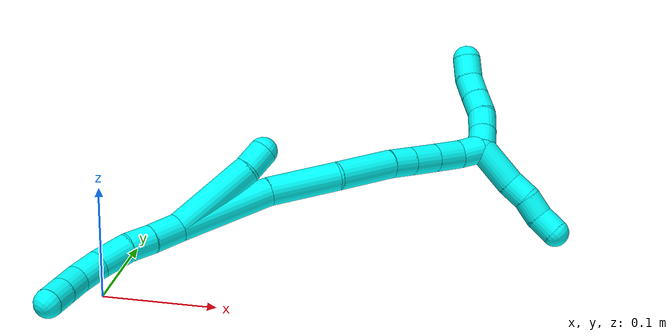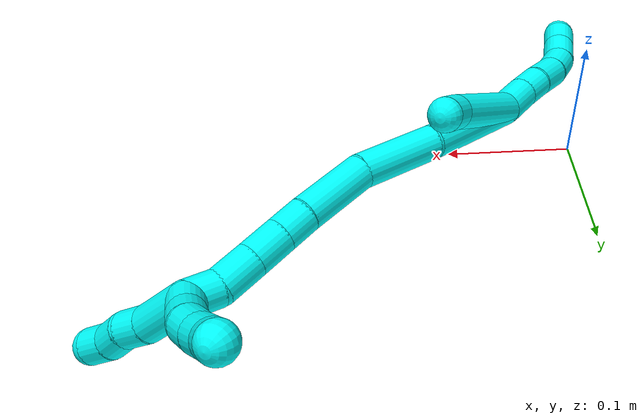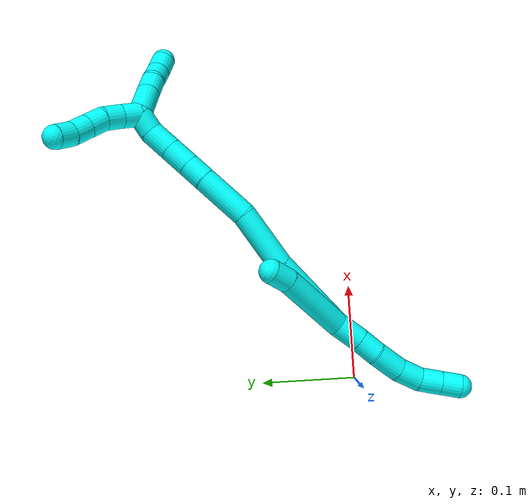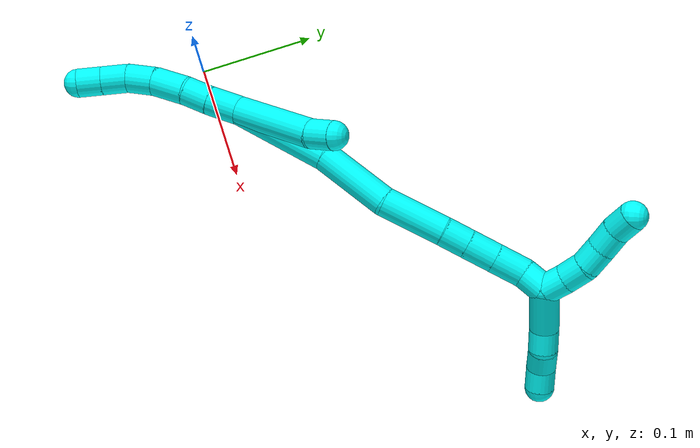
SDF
<sdf version="1.7">
 <world name="default">
  <model name="3">
   <static>0</static>
   <link name="3">
    <collision name="collision-cylinder-e_1_2_8">
     <pose>-0.00252 -0.004368 -0.013291 2.82407 -0.178192 -1.01784</pose>
     <geometry><cylinder><radius>0.0125</radius><length>0.02843</length></cylinder></geometry>
     <surface>
      <friction><ode><mu>1.16</mu><mu2>1.16</mu2><slip1>0</slip1><slip2>0</slip2></ode></friction>
      <contact><ode><kp>1e+06</kp><kd>1</kd><max_vel>0</max_vel><min_depth>0.001</min_depth></ode></contact>
     </surface>
    </collision>
    <visual name="visual-cylinder-e_1_2_8">
     <pose>-0.00252 -0.004368 -0.013291 2.82407 -0.178192 -1.01784</pose>
     <geometry><cylinder><radius>0.0125</radius><length>0.02843</length></cylinder></geometry>
     <material><ambient>0.003922 1 0.996078 1</ambient></material>
    </visual>
    <collision name="collision-cylinder-e_2_8_9">
     <pose>-0.007724 -0.012393 -0.036906 2.80118 -0.240416 -1.22521</pose>
     <geometry><cylinder><radius>0.0125</radius><length>0.022554</length></cylinder></geometry>
     <surface>
      <friction><ode><mu>1.16</mu><mu2>1.16</mu2><slip1>0</slip1><slip2>0</slip2></ode></friction>
      <contact><ode><kp>1e+06</kp><kd>1</kd><max_vel>0</max_vel><min_depth>0.001</min_depth></ode></contact>
     </surface>
    </collision>
    <visual name="visual-cylinder-e_2_8_9">
     <pose>-0.007724 -0.012393 -0.036906 2.80118 -0.240416 -1.22521</pose>
     <geometry><cylinder><radius>0.0125</radius><length>0.022554</length></cylinder></geometry>
     <material><ambient>0.003922 1 0.996078 1</ambient></material>
    </visual>
    <collision name="collision-cylinder-e_3_9_10">
     <pose>-0.013163 -0.018669 -0.061765 2.96328 -0.184337 -1.6042</pose>
     <geometry><cylinder><radius>0.0125</radius><length>0.030049</length></cylinder></geometry>
     <surface>
      <friction><ode><mu>1.16</mu><mu2>1.16</mu2><slip1>0</slip1><slip2>0</slip2></ode></friction>
      <contact><ode><kp>1e+06</kp><kd>1</kd><max_vel>0</max_vel><min_depth>0.001</min_depth></ode></contact>
     </surface>
    </collision>
    <visual name="visual-cylinder-e_3_9_10">
     <pose>-0.013163 -0.018669 -0.061765 2.96328 -0.184337 -1.6042</pose>
     <geometry><cylinder><radius>0.0125</radius><length>0.030049</length></cylinder></geometry>
     <material><ambient>0.003922 1 0.996078 1</ambient></material>
    </visual>
    <collision name="collision-cylinder-e_4_10_11">
     <pose>-0.015975 -0.023973 -0.088561 2.92603 -0.004617 -0.042667</pose>
     <geometry><cylinder><radius>0.0125</radius><length>0.025101</length></cylinder></geometry>
     <surface>
      <friction><ode><mu>1.16</mu><mu2>1.16</mu2><slip1>0</slip1><slip2>0</slip2></ode></friction>
      <contact><ode><kp>1e+06</kp><kd>1</kd><max_vel>0</max_vel><min_depth>0.001</min_depth></ode></contact>
     </surface>
    </collision>
    <visual name="visual-cylinder-e_4_10_11">
     <pose>-0.015975 -0.023973 -0.088561 2.92603 -0.004617 -0.042667</pose>
     <geometry><cylinder><radius>0.0125</radius><length>0.025101</length></cylinder></geometry>
     <material><ambient>0.003922 1 0.996078 1</ambient></material>
    </visual>
    <collision name="collision-cylinder-e_5_11_12">
     <pose>-0.012995 -0.030553 -0.111134 2.78051 0.268919 1.2756</pose>
     <geometry><cylinder><radius>0.0125</radius><length>0.02287</length></cylinder></geometry>
     <surface>
      <friction><ode><mu>1.16</mu><mu2>1.16</mu2><slip1>0</slip1><slip2>0</slip2></ode></friction>
      <contact><ode><kp>1e+06</kp><kd>1</kd><max_vel>0</max_vel><min_depth>0.001</min_depth></ode></contact>
     </surface>
    </collision>
    <visual name="visual-cylinder-e_5_11_12">
     <pose>-0.012995 -0.030553 -0.111134 2.78051 0.268919 1.2756</pose>
     <geometry><cylinder><radius>0.0125</radius><length>0.02287</length></cylinder></geometry>
     <material><ambient>0.003922 1 0.996078 1</ambient></material>
    </visual>
    <collision name="collision-cylinder-e_6_12_6">
     <pose>-0.007165 -0.038023 -0.130914 2.78046 0.269219 1.27653</pose>
     <geometry><cylinder><radius>0.0125</radius><length>0.020996</length></cylinder></geometry>
     <surface>
      <friction><ode><mu>1.16</mu><mu2>1.16</mu2><slip1>0</slip1><slip2>0</slip2></ode></friction>
      <contact><ode><kp>1e+06</kp><kd>1</kd><max_vel>0</max_vel><min_depth>0.001</min_depth></ode></contact>
     </surface>
    </collision>
    <visual name="visual-cylinder-e_6_12_6">
     <pose>-0.007165 -0.038023 -0.130914 2.78046 0.269219 1.27653</pose>
     <geometry><cylinder><radius>0.0125</radius><length>0.020996</length></cylinder></geometry>
     <material><ambient>0.003922 1 0.996078 1</ambient></material>
    </visual>
    <collision name="collision-cylinder-e_1_2_13">
     <pose>0.009607 -0.003585 0.037502 0.095309 0.249694 0.01197</pose>
     <geometry><cylinder><radius>0.0125</radius><length>0.077757</length></cylinder></geometry>
     <surface>
      <friction><ode><mu>1.16</mu><mu2>1.16</mu2><slip1>0</slip1><slip2>0</slip2></ode></friction>
      <contact><ode><kp>1e+06</kp><kd>1</kd><max_vel>0</max_vel><min_depth>0.001</min_depth></ode></contact>
     </surface>
    </collision>
    <visual name="visual-cylinder-e_1_2_13">
     <pose>0.009607 -0.003585 0.037502 0.095309 0.249694 0.01197</pose>
     <geometry><cylinder><radius>0.0125</radius><length>0.077757</length></cylinder></geometry>
     <material><ambient>0.003922 1 0.996078 1</ambient></material>
    </visual>
    <collision name="collision-cylinder-e_2_13_5">
     <pose>0.019861 -0.008333 0.086045 0.104932 0.058142 0.003054</pose>
     <geometry><cylinder><radius>0.0125</radius><length>0.022243</length></cylinder></geometry>
     <surface>
      <friction><ode><mu>1.16</mu><mu2>1.16</mu2><slip1>0</slip1><slip2>0</slip2></ode></friction>
      <contact><ode><kp>1e+06</kp><kd>1</kd><max_vel>0</max_vel><min_depth>0.001</min_depth></ode></contact>
     </surface>
    </collision>
    <visual name="visual-cylinder-e_2_13_5">
     <pose>0.019861 -0.008333 0.086045 0.104932 0.058142 0.003054</pose>
     <geometry><cylinder><radius>0.0125</radius><length>0.022243</length></cylinder></geometry>
     <material><ambient>0.003922 1 0.996078 1</ambient></material>
    </visual>
    <collision name="collision-cylinder-e_1_2_14">
     <pose>0.015165 0.009133 0.039325 -0.228199 0.359334 -0.041621</pose>
     <geometry><cylinder><radius>0.0125</radius><length>0.086253</length></cylinder></geometry>
     <surface>
      <friction><ode><mu>1.16</mu><mu2>1.16</mu2><slip1>0</slip1><slip2>0</slip2></ode></friction>
      <contact><ode><kp>1e+06</kp><kd>1</kd><max_vel>0</max_vel><min_depth>0.001</min_depth></ode></contact>
     </surface>
    </collision>
    <visual name="visual-cylinder-e_1_2_14">
     <pose>0.015165 0.009133 0.039325 -0.228199 0.359334 -0.041621</pose>
     <geometry><cylinder><radius>0.0125</radius><length>0.086253</length></cylinder></geometry>
     <material><ambient>0.003922 1 0.996078 1</ambient></material>
    </visual>
    <collision name="collision-cylinder-e_2_14_15">
     <pose>0.045498 0.027359 0.104824 -0.334367 0.500841 -0.08628</pose>
     <geometry><cylinder><radius>0.0125</radius><length>0.063174</length></cylinder></geometry>
     <surface>
      <friction><ode><mu>1.16</mu><mu2>1.16</mu2><slip1>0</slip1><slip2>0</slip2></ode></friction>
      <contact><ode><kp>1e+06</kp><kd>1</kd><max_vel>0</max_vel><min_depth>0.001</min_depth></ode></contact>
     </surface>
    </collision>
    <visual name="visual-cylinder-e_2_14_15">
     <pose>0.045498 0.027359 0.104824 -0.334367 0.500841 -0.08628</pose>
     <geometry><cylinder><radius>0.0125</radius><length>0.063174</length></cylinder></geometry>
     <material><ambient>0.003922 1 0.996078 1</ambient></material>
    </visual>
    <collision name="collision-cylinder-e_3_15_16">
     <pose>0.068341 0.04752 0.154594 -0.438569 0.286408 -0.064249</pose>
     <geometry><cylinder><radius>0.0125</radius><length>0.054342</length></cylinder></geometry>
     <surface>
      <friction><ode><mu>1.16</mu><mu2>1.16</mu2><slip1>0</slip1><slip2>0</slip2></ode></friction>
      <contact><ode><kp>1e+06</kp><kd>1</kd><max_vel>0</max_vel><min_depth>0.001</min_depth></ode></contact>
     </surface>
    </collision>
    <visual name="visual-cylinder-e_3_15_16">
     <pose>0.068341 0.04752 0.154594 -0.438569 0.286408 -0.064249</pose>
     <geometry><cylinder><radius>0.0125</radius><length>0.054342</length></cylinder></geometry>
     <material><ambient>0.003922 1 0.996078 1</ambient></material>
    </visual>
    <collision name="collision-cylinder-e_4_16_17">
     <pose>0.079132 0.063883 0.187353 -0.524048 0.286307 -0.077275</pose>
     <geometry><cylinder><radius>0.0125</radius><length>0.022062</length></cylinder></geometry>
     <surface>
      <friction><ode><mu>1.16</mu><mu2>1.16</mu2><slip1>0</slip1><slip2>0</slip2></ode></friction>
      <contact><ode><kp>1e+06</kp><kd>1</kd><max_vel>0</max_vel><min_depth>0.001</min_depth></ode></contact>
     </surface>
    </collision>
    <visual name="visual-cylinder-e_4_16_17">
     <pose>0.079132 0.063883 0.187353 -0.524048 0.286307 -0.077275</pose>
     <geometry><cylinder><radius>0.0125</radius><length>0.022062</length></cylinder></geometry>
     <material><ambient>0.003922 1 0.996078 1</ambient></material>
    </visual>
    <collision name="collision-cylinder-e_5_17_18">
     <pose>0.085802 0.075273 0.207059 -0.524107 0.283975 -0.076647</pose>
     <geometry><cylinder><radius>0.0125</radius><length>0.025375</length></cylinder></geometry>
     <surface>
      <friction><ode><mu>1.16</mu><mu2>1.16</mu2><slip1>0</slip1><slip2>0</slip2></ode></friction>
      <contact><ode><kp>1e+06</kp><kd>1</kd><max_vel>0</max_vel><min_depth>0.001</min_depth></ode></contact>
     </surface>
    </collision>
    <visual name="visual-cylinder-e_5_17_18">
     <pose>0.085802 0.075273 0.207059 -0.524107 0.283975 -0.076647</pose>
     <geometry><cylinder><radius>0.0125</radius><length>0.025375</length></cylinder></geometry>
     <material><ambient>0.003922 1 0.996078 1</ambient></material>
    </visual>
    <collision name="collision-cylinder-e_6_18_19">
     <pose>0.093221 0.087829 0.229043 -0.514157 0.286105 -0.075697</pose>
     <geometry><cylinder><radius>0.0125</radius><length>0.027388</length></cylinder></geometry>
     <surface>
      <friction><ode><mu>1.16</mu><mu2>1.16</mu2><slip1>0</slip1><slip2>0</slip2></ode></friction>
      <contact><ode><kp>1e+06</kp><kd>1</kd><max_vel>0</max_vel><min_depth>0.001</min_depth></ode></contact>
     </surface>
    </collision>
    <visual name="visual-cylinder-e_6_18_19">
     <pose>0.093221 0.087829 0.229043 -0.514157 0.286105 -0.075697</pose>
     <geometry><cylinder><radius>0.0125</radius><length>0.027388</length></cylinder></geometry>
     <material><ambient>0.003922 1 0.996078 1</ambient></material>
    </visual>
    <collision name="collision-cylinder-e_7_19_1">
     <pose>0.10264 0.096796 0.249281 -0.277442 0.545587 -0.078081</pose>
     <geometry><cylinder><radius>0.0125</radius><length>0.021407</length></cylinder></geometry>
     <surface>
      <friction><ode><mu>1.16</mu><mu2>1.16</mu2><slip1>0</slip1><slip2>0</slip2></ode></friction>
      <contact><ode><kp>1e+06</kp><kd>1</kd><max_vel>0</max_vel><min_depth>0.001</min_depth></ode></contact>
     </surface>
    </collision>
    <visual name="visual-cylinder-e_7_19_1">
     <pose>0.10264 0.096796 0.249281 -0.277442 0.545587 -0.078081</pose>
     <geometry><cylinder><radius>0.0125</radius><length>0.021407</length></cylinder></geometry>
     <material><ambient>0.003922 1 0.996078 1</ambient></material>
    </visual>
    <collision name="collision-cylinder-e_1_1_20">
     <pose>0.102933 0.098272 0.266522 0.121389 -0.554074 -0.034556</pose>
     <geometry><cylinder><radius>0.0125</radius><length>0.02</length></cylinder></geometry>
     <surface>
      <friction><ode><mu>1.16</mu><mu2>1.16</mu2><slip1>0</slip1><slip2>0</slip2></ode></friction>
      <contact><ode><kp>1e+06</kp><kd>1</kd><max_vel>0</max_vel><min_depth>0.001</min_depth></ode></contact>
     </surface>
    </collision>
    <visual name="visual-cylinder-e_1_1_20">
     <pose>0.102933 0.098272 0.266522 0.121389 -0.554074 -0.034556</pose>
     <geometry><cylinder><radius>0.0125</radius><length>0.02</length></cylinder></geometry>
     <material><ambient>0.003922 1 0.996078 1</ambient></material>
    </visual>
    <collision name="collision-cylinder-e_2_20_21">
     <pose>0.092377 0.094752 0.283073 0.29798 -0.557969 -0.085942</pose>
     <geometry><cylinder><radius>0.0125</radius><length>0.02</length></cylinder></geometry>
     <surface>
      <friction><ode><mu>1.16</mu><mu2>1.16</mu2><slip1>0</slip1><slip2>0</slip2></ode></friction>
      <contact><ode><kp>1e+06</kp><kd>1</kd><max_vel>0</max_vel><min_depth>0.001</min_depth></ode></contact>
     </surface>
    </collision>
    <visual name="visual-cylinder-e_2_20_21">
     <pose>0.092377 0.094752 0.283073 0.29798 -0.557969 -0.085942</pose>
     <geometry><cylinder><radius>0.0125</radius><length>0.02</length></cylinder></geometry>
     <material><ambient>0.003922 1 0.996078 1</ambient></material>
    </visual>
    <collision name="collision-cylinder-e_3_21_22">
     <pose>0.079796 0.08935 0.297382 0.439025 -0.816292 -0.192361</pose>
     <geometry><cylinder><radius>0.0125</radius><length>0.02</length></cylinder></geometry>
     <surface>
      <friction><ode><mu>1.16</mu><mu2>1.16</mu2><slip1>0</slip1><slip2>0</slip2></ode></friction>
      <contact><ode><kp>1e+06</kp><kd>1</kd><max_vel>0</max_vel><min_depth>0.001</min_depth></ode></contact>
     </surface>
    </collision>
    <visual name="visual-cylinder-e_3_21_22">
     <pose>0.079796 0.08935 0.297382 0.439025 -0.816292 -0.192361</pose>
     <geometry><cylinder><radius>0.0125</radius><length>0.02</length></cylinder></geometry>
     <material><ambient>0.003922 1 0.996078 1</ambient></material>
    </visual>
    <collision name="collision-cylinder-e_4_22_23">
     <pose>0.065605 0.082507 0.309654 0.574587 -0.762104 -0.235652</pose>
     <geometry><cylinder><radius>0.0125</radius><length>0.02</length></cylinder></geometry>
     <surface>
      <friction><ode><mu>1.16</mu><mu2>1.16</mu2><slip1>0</slip1><slip2>0</slip2></ode></friction>
      <contact><ode><kp>1e+06</kp><kd>1</kd><max_vel>0</max_vel><min_depth>0.001</min_depth></ode></contact>
     </surface>
    </collision>
    <visual name="visual-cylinder-e_4_22_23">
     <pose>0.065605 0.082507 0.309654 0.574587 -0.762104 -0.235652</pose>
     <geometry><cylinder><radius>0.0125</radius><length>0.02</length></cylinder></geometry>
     <material><ambient>0.003922 1 0.996078 1</ambient></material>
    </visual>
    <collision name="collision-cylinder-e_5_23_4">
     <pose>0.05381 0.073672 0.32294 0.596975 -0.511028 -0.160402</pose>
     <geometry><cylinder><radius>0.0125</radius><length>0.02</length></cylinder></geometry>
     <surface>
      <friction><ode><mu>1.16</mu><mu2>1.16</mu2><slip1>0</slip1><slip2>0</slip2></ode></friction>
      <contact><ode><kp>1e+06</kp><kd>1</kd><max_vel>0</max_vel><min_depth>0.001</min_depth></ode></contact>
     </surface>
    </collision>
    <visual name="visual-cylinder-e_5_23_4">
     <pose>0.05381 0.073672 0.32294 0.596975 -0.511028 -0.160402</pose>
     <geometry><cylinder><radius>0.0125</radius><length>0.02</length></cylinder></geometry>
     <material><ambient>0.003922 1 0.996078 1</ambient></material>
    </visual>
    <collision name="collision-cylinder-e_1_1_24">
     <pose>0.121326 0.114149 0.255814 -1.72229 0.718416 -0.824275</pose>
     <geometry><cylinder><radius>0.0125</radius><length>0.039901</length></cylinder></geometry>
     <surface>
      <friction><ode><mu>1.16</mu><mu2>1.16</mu2><slip1>0</slip1><slip2>0</slip2></ode></friction>
      <contact><ode><kp>1e+06</kp><kd>1</kd><max_vel>0</max_vel><min_depth>0.001</min_depth></ode></contact>
     </surface>
    </collision>
    <visual name="visual-cylinder-e_1_1_24">
     <pose>0.121326 0.114149 0.255814 -1.72229 0.718416 -0.824275</pose>
     <geometry><cylinder><radius>0.0125</radius><length>0.039901</length></cylinder></geometry>
     <material><ambient>0.003922 1 0.996078 1</ambient></material>
    </visual>
    <collision name="collision-cylinder-e_2_24_25">
     <pose>0.142536 0.134856 0.252641 -1.72426 0.937785 -1.06749</pose>
     <geometry><cylinder><radius>0.0125</radius><length>0.020042</length></cylinder></geometry>
     <surface>
      <friction><ode><mu>1.16</mu><mu2>1.16</mu2><slip1>0</slip1><slip2>0</slip2></ode></friction>
      <contact><ode><kp>1e+06</kp><kd>1</kd><max_vel>0</max_vel><min_depth>0.001</min_depth></ode></contact>
     </surface>
    </collision>
    <visual name="visual-cylinder-e_2_24_25">
     <pose>0.142536 0.134856 0.252641 -1.72426 0.937785 -1.06749</pose>
     <geometry><cylinder><radius>0.0125</radius><length>0.020042</length></cylinder></geometry>
     <material><ambient>0.003922 1 0.996078 1</ambient></material>
    </visual>
    <collision name="collision-cylinder-e_3_25_26">
     <pose>0.156714 0.148384 0.249655 -1.83561 0.654504 -0.835324</pose>
     <geometry><cylinder><radius>0.0125</radius><length>0.020035</length></cylinder></geometry>
     <surface>
      <friction><ode><mu>1.16</mu><mu2>1.16</mu2><slip1>0</slip1><slip2>0</slip2></ode></friction>
      <contact><ode><kp>1e+06</kp><kd>1</kd><max_vel>0</max_vel><min_depth>0.001</min_depth></ode></contact>
     </surface>
    </collision>
    <visual name="visual-cylinder-e_3_25_26">
     <pose>0.156714 0.148384 0.249655 -1.83561 0.654504 -0.835324</pose>
     <geometry><cylinder><radius>0.0125</radius><length>0.020035</length></cylinder></geometry>
     <material><ambient>0.003922 1 0.996078 1</ambient></material>
    </visual>
    <collision name="collision-cylinder-e_4_26_3">
     <pose>0.170752 0.162024 0.246324 -1.77731 0.915778 -1.09076</pose>
     <geometry><cylinder><radius>0.0125</radius><length>0.020022</length></cylinder></geometry>
     <surface>
      <friction><ode><mu>1.16</mu><mu2>1.16</mu2><slip1>0</slip1><slip2>0</slip2></ode></friction>
      <contact><ode><kp>1e+06</kp><kd>1</kd><max_vel>0</max_vel><min_depth>0.001</min_depth></ode></contact>
     </surface>
    </collision>
    <visual name="visual-cylinder-e_4_26_3">
     <pose>0.170752 0.162024 0.246324 -1.77731 0.915778 -1.09076</pose>
     <geometry><cylinder><radius>0.0125</radius><length>0.020022</length></cylinder></geometry>
     <material><ambient>0.003922 1 0.996078 1</ambient></material>
    </visual>
    <collision name="collision-sphere-3">
     <pose>0.178691 0.167992 0.245074 0 -0 0</pose>
     <geometry><sphere><radius>0.0125</radius></sphere></geometry>
     <surface>
      <friction><ode><mu>1.16</mu><mu2>1.16</mu2><slip1>0</slip1><slip2>0</slip2></ode></friction>
      <contact><ode><kp>1e+06</kp><kd>1</kd><max_vel>0</max_vel><min_depth>0.001</min_depth></ode></contact>
     </surface>
    </collision>
    <visual name="visual-sphere-3">
     <pose>0.178691 0.167992 0.245074 0 -0 0</pose>
     <geometry><sphere><radius>0.0125</radius></sphere></geometry>
     <material><ambient>0.003922 1 0.996078 1</ambient></material>
    </visual>
    <collision name="collision-sphere-26">
     <pose>0.162813 0.156055 0.247575 0 -0 0</pose>
     <geometry><sphere><radius>0.0125</radius></sphere></geometry>
     <surface>
      <friction><ode><mu>1.16</mu><mu2>1.16</mu2><slip1>0</slip1><slip2>0</slip2></ode></friction>
      <contact><ode><kp>1e+06</kp><kd>1</kd><max_vel>0</max_vel><min_depth>0.001</min_depth></ode></contact>
     </surface>
    </collision>
    <visual name="visual-sphere-26">
     <pose>0.162813 0.156055 0.247575 0 -0 0</pose>
     <geometry><sphere><radius>0.0125</radius></sphere></geometry>
     <material><ambient>0.003922 1 0.996078 1</ambient></material>
    </visual>
    <collision name="collision-sphere-25">
     <pose>0.150616 0.140714 0.251735 0 -0 0</pose>
     <geometry><sphere><radius>0.0125</radius></sphere></geometry>
     <surface>
      <friction><ode><mu>1.16</mu><mu2>1.16</mu2><slip1>0</slip1><slip2>0</slip2></ode></friction>
      <contact><ode><kp>1e+06</kp><kd>1</kd><max_vel>0</max_vel><min_depth>0.001</min_depth></ode></contact>
     </surface>
    </collision>
    <visual name="visual-sphere-25">
     <pose>0.150616 0.140714 0.251735 0 -0 0</pose>
     <geometry><sphere><radius>0.0125</radius></sphere></geometry>
     <material><ambient>0.003922 1 0.996078 1</ambient></material>
    </visual>
    <collision name="collision-sphere-24">
     <pose>0.134457 0.128997 0.253547 0 -0 0</pose>
     <geometry><sphere><radius>0.0125</radius></sphere></geometry>
     <surface>
      <friction><ode><mu>1.16</mu><mu2>1.16</mu2><slip1>0</slip1><slip2>0</slip2></ode></friction>
      <contact><ode><kp>1e+06</kp><kd>1</kd><max_vel>0</max_vel><min_depth>0.001</min_depth></ode></contact>
     </surface>
    </collision>
    <visual name="visual-sphere-24">
     <pose>0.134457 0.128997 0.253547 0 -0 0</pose>
     <geometry><sphere><radius>0.0125</radius></sphere></geometry>
     <material><ambient>0.003922 1 0.996078 1</ambient></material>
    </visual>
    <collision name="collision-sphere-4">
     <pose>0.048919 0.068769 0.330154 0 -0 0</pose>
     <geometry><sphere><radius>0.0125</radius></sphere></geometry>
     <surface>
      <friction><ode><mu>1.16</mu><mu2>1.16</mu2><slip1>0</slip1><slip2>0</slip2></ode></friction>
      <contact><ode><kp>1e+06</kp><kd>1</kd><max_vel>0</max_vel><min_depth>0.001</min_depth></ode></contact>
     </surface>
    </collision>
    <visual name="visual-sphere-4">
     <pose>0.048919 0.068769 0.330154 0 -0 0</pose>
     <geometry><sphere><radius>0.0125</radius></sphere></geometry>
     <material><ambient>0.003922 1 0.996078 1</ambient></material>
    </visual>
    <collision name="collision-sphere-23">
     <pose>0.058701 0.078575 0.315726 0 -0 0</pose>
     <geometry><sphere><radius>0.0125</radius></sphere></geometry>
     <surface>
      <friction><ode><mu>1.16</mu><mu2>1.16</mu2><slip1>0</slip1><slip2>0</slip2></ode></friction>
      <contact><ode><kp>1e+06</kp><kd>1</kd><max_vel>0</max_vel><min_depth>0.001</min_depth></ode></contact>
     </surface>
    </collision>
    <visual name="visual-sphere-23">
     <pose>0.058701 0.078575 0.315726 0 -0 0</pose>
     <geometry><sphere><radius>0.0125</radius></sphere></geometry>
     <material><ambient>0.003922 1 0.996078 1</ambient></material>
    </visual>
    <collision name="collision-sphere-22">
     <pose>0.07251 0.086438 0.303582 0 -0 0</pose>
     <geometry><sphere><radius>0.0125</radius></sphere></geometry>
     <surface>
      <friction><ode><mu>1.16</mu><mu2>1.16</mu2><slip1>0</slip1><slip2>0</slip2></ode></friction>
      <contact><ode><kp>1e+06</kp><kd>1</kd><max_vel>0</max_vel><min_depth>0.001</min_depth></ode></contact>
     </surface>
    </collision>
    <visual name="visual-sphere-22">
     <pose>0.07251 0.086438 0.303582 0 -0 0</pose>
     <geometry><sphere><radius>0.0125</radius></sphere></geometry>
     <material><ambient>0.003922 1 0.996078 1</ambient></material>
    </visual>
    <collision name="collision-sphere-21">
     <pose>0.087082 0.092261 0.291182 0 -0 0</pose>
     <geometry><sphere><radius>0.0125</radius></sphere></geometry>
     <surface>
      <friction><ode><mu>1.16</mu><mu2>1.16</mu2><slip1>0</slip1><slip2>0</slip2></ode></friction>
      <contact><ode><kp>1e+06</kp><kd>1</kd><max_vel>0</max_vel><min_depth>0.001</min_depth></ode></contact>
     </surface>
    </collision>
    <visual name="visual-sphere-21">
     <pose>0.087082 0.092261 0.291182 0 -0 0</pose>
     <geometry><sphere><radius>0.0125</radius></sphere></geometry>
     <material><ambient>0.003922 1 0.996078 1</ambient></material>
    </visual>
    <collision name="collision-sphere-20">
     <pose>0.097671 0.097242 0.274963 0 -0 0</pose>
     <geometry><sphere><radius>0.0125</radius></sphere></geometry>
     <surface>
      <friction><ode><mu>1.16</mu><mu2>1.16</mu2><slip1>0</slip1><slip2>0</slip2></ode></friction>
      <contact><ode><kp>1e+06</kp><kd>1</kd><max_vel>0</max_vel><min_depth>0.001</min_depth></ode></contact>
     </surface>
    </collision>
    <visual name="visual-sphere-20">
     <pose>0.097671 0.097242 0.274963 0 -0 0</pose>
     <geometry><sphere><radius>0.0125</radius></sphere></geometry>
     <material><ambient>0.003922 1 0.996078 1</ambient></material>
    </visual>
    <collision name="collision-sphere-12">
     <pose>-0.009957 -0.034447 -0.121447 0 -0 0</pose>
     <geometry><sphere><radius>0.0125</radius></sphere></geometry>
     <surface>
      <friction><ode><mu>1.16</mu><mu2>1.16</mu2><slip1>0</slip1><slip2>0</slip2></ode></friction>
      <contact><ode><kp>1e+06</kp><kd>1</kd><max_vel>0</max_vel><min_depth>0.001</min_depth></ode></contact>
     </surface>
    </collision>
    <visual name="visual-sphere-12">
     <pose>-0.009957 -0.034447 -0.121447 0 -0 0</pose>
     <geometry><sphere><radius>0.0125</radius></sphere></geometry>
     <material><ambient>0.003922 1 0.996078 1</ambient></material>
    </visual>
    <collision name="collision-sphere-11">
     <pose>-0.016033 -0.026658 -0.10082 0 -0 0</pose>
     <geometry><sphere><radius>0.0125</radius></sphere></geometry>
     <surface>
      <friction><ode><mu>1.16</mu><mu2>1.16</mu2><slip1>0</slip1><slip2>0</slip2></ode></friction>
      <contact><ode><kp>1e+06</kp><kd>1</kd><max_vel>0</max_vel><min_depth>0.001</min_depth></ode></contact>
     </surface>
    </collision>
    <visual name="visual-sphere-11">
     <pose>-0.016033 -0.026658 -0.10082 0 -0 0</pose>
     <geometry><sphere><radius>0.0125</radius></sphere></geometry>
     <material><ambient>0.003922 1 0.996078 1</ambient></material>
    </visual>
    <collision name="collision-sphere-10">
     <pose>-0.015917 -0.021289 -0.076301 0 -0 0</pose>
     <geometry><sphere><radius>0.0125</radius></sphere></geometry>
     <surface>
      <friction><ode><mu>1.16</mu><mu2>1.16</mu2><slip1>0</slip1><slip2>0</slip2></ode></friction>
      <contact><ode><kp>1e+06</kp><kd>1</kd><max_vel>0</max_vel><min_depth>0.001</min_depth></ode></contact>
     </surface>
    </collision>
    <visual name="visual-sphere-10">
     <pose>-0.015917 -0.021289 -0.076301 0 -0 0</pose>
     <geometry><sphere><radius>0.0125</radius></sphere></geometry>
     <material><ambient>0.003922 1 0.996078 1</ambient></material>
    </visual>
    <collision name="collision-sphere-9">
     <pose>-0.01041 -0.01605 -0.04723 0 -0 0</pose>
     <geometry><sphere><radius>0.0125</radius></sphere></geometry>
     <surface>
      <friction><ode><mu>1.16</mu><mu2>1.16</mu2><slip1>0</slip1><slip2>0</slip2></ode></friction>
      <contact><ode><kp>1e+06</kp><kd>1</kd><max_vel>0</max_vel><min_depth>0.001</min_depth></ode></contact>
     </surface>
    </collision>
    <visual name="visual-sphere-9">
     <pose>-0.01041 -0.01605 -0.04723 0 -0 0</pose>
     <geometry><sphere><radius>0.0125</radius></sphere></geometry>
     <material><ambient>0.003922 1 0.996078 1</ambient></material>
    </visual>
    <collision name="collision-sphere-2">
     <geometry><sphere><radius>0.0125</radius></sphere></geometry>
     <surface>
      <friction><ode><mu>1.16</mu><mu2>1.16</mu2><slip1>0</slip1><slip2>0</slip2></ode></friction>
      <contact><ode><kp>1e+06</kp><kd>1</kd><max_vel>0</max_vel><min_depth>0.001</min_depth></ode></contact>
     </surface>
    </collision>
    <visual name="visual-sphere-2">
     <geometry><sphere><radius>0.0125</radius></sphere></geometry>
     <material><ambient>0.003922 1 0.996078 1</ambient></material>
    </visual>
    <collision name="collision-sphere-19">
     <pose>0.097086 0.094289 0.240481 0 -0 0</pose>
     <geometry><sphere><radius>0.0125</radius></sphere></geometry>
     <surface>
      <friction><ode><mu>1.16</mu><mu2>1.16</mu2><slip1>0</slip1><slip2>0</slip2></ode></friction>
      <contact><ode><kp>1e+06</kp><kd>1</kd><max_vel>0</max_vel><min_depth>0.001</min_depth></ode></contact>
     </surface>
    </collision>
    <visual name="visual-sphere-19">
     <pose>0.097086 0.094289 0.240481 0 -0 0</pose>
     <geometry><sphere><radius>0.0125</radius></sphere></geometry>
     <material><ambient>0.003922 1 0.996078 1</ambient></material>
    </visual>
    <collision name="collision-sphere-8">
     <pose>-0.005039 -0.008736 -0.026581 0 -0 0</pose>
     <geometry><sphere><radius>0.0125</radius></sphere></geometry>
     <surface>
      <friction><ode><mu>1.16</mu><mu2>1.16</mu2><slip1>0</slip1><slip2>0</slip2></ode></friction>
      <contact><ode><kp>1e+06</kp><kd>1</kd><max_vel>0</max_vel><min_depth>0.001</min_depth></ode></contact>
     </surface>
    </collision>
    <visual name="visual-sphere-8">
     <pose>-0.005039 -0.008736 -0.026581 0 -0 0</pose>
     <geometry><sphere><radius>0.0125</radius></sphere></geometry>
     <material><ambient>0.003922 1 0.996078 1</ambient></material>
    </visual>
    <collision name="collision-sphere-6">
     <pose>-0.004372 -0.041599 -0.140381 0 -0 0</pose>
     <geometry><sphere><radius>0.0125</radius></sphere></geometry>
     <surface>
      <friction><ode><mu>1.16</mu><mu2>1.16</mu2><slip1>0</slip1><slip2>0</slip2></ode></friction>
      <contact><ode><kp>1e+06</kp><kd>1</kd><max_vel>0</max_vel><min_depth>0.001</min_depth></ode></contact>
     </surface>
    </collision>
    <visual name="visual-sphere-6">
     <pose>-0.004372 -0.041599 -0.140381 0 -0 0</pose>
     <geometry><sphere><radius>0.0125</radius></sphere></geometry>
     <material><ambient>0.003922 1 0.996078 1</ambient></material>
    </visual>
    <collision name="collision-sphere-13">
     <pose>0.019214 -0.00717 0.075004 0 -0 0</pose>
     <geometry><sphere><radius>0.0125</radius></sphere></geometry>
     <surface>
      <friction><ode><mu>1.16</mu><mu2>1.16</mu2><slip1>0</slip1><slip2>0</slip2></ode></friction>
      <contact><ode><kp>1e+06</kp><kd>1</kd><max_vel>0</max_vel><min_depth>0.001</min_depth></ode></contact>
     </surface>
    </collision>
    <visual name="visual-sphere-13">
     <pose>0.019214 -0.00717 0.075004 0 -0 0</pose>
     <geometry><sphere><radius>0.0125</radius></sphere></geometry>
     <material><ambient>0.003922 1 0.996078 1</ambient></material>
    </visual>
    <collision name="collision-sphere-5">
     <pose>0.020507 -0.009496 0.097087 0 -0 0</pose>
     <geometry><sphere><radius>0.0125</radius></sphere></geometry>
     <surface>
      <friction><ode><mu>1.16</mu><mu2>1.16</mu2><slip1>0</slip1><slip2>0</slip2></ode></friction>
      <contact><ode><kp>1e+06</kp><kd>1</kd><max_vel>0</max_vel><min_depth>0.001</min_depth></ode></contact>
     </surface>
    </collision>
    <visual name="visual-sphere-5">
     <pose>0.020507 -0.009496 0.097087 0 -0 0</pose>
     <geometry><sphere><radius>0.0125</radius></sphere></geometry>
     <material><ambient>0.003922 1 0.996078 1</ambient></material>
    </visual>
    <collision name="collision-sphere-14">
     <pose>0.030331 0.018266 0.078651 0 -0 0</pose>
     <geometry><sphere><radius>0.0125</radius></sphere></geometry>
     <surface>
      <friction><ode><mu>1.16</mu><mu2>1.16</mu2><slip1>0</slip1><slip2>0</slip2></ode></friction>
      <contact><ode><kp>1e+06</kp><kd>1</kd><max_vel>0</max_vel><min_depth>0.001</min_depth></ode></contact>
     </surface>
    </collision>
    <visual name="visual-sphere-14">
     <pose>0.030331 0.018266 0.078651 0 -0 0</pose>
     <geometry><sphere><radius>0.0125</radius></sphere></geometry>
     <material><ambient>0.003922 1 0.996078 1</ambient></material>
    </visual>
    <collision name="collision-sphere-15">
     <pose>0.060665 0.036452 0.130996 0 -0 0</pose>
     <geometry><sphere><radius>0.0125</radius></sphere></geometry>
     <surface>
      <friction><ode><mu>1.16</mu><mu2>1.16</mu2><slip1>0</slip1><slip2>0</slip2></ode></friction>
      <contact><ode><kp>1e+06</kp><kd>1</kd><max_vel>0</max_vel><min_depth>0.001</min_depth></ode></contact>
     </surface>
    </collision>
    <visual name="visual-sphere-15">
     <pose>0.060665 0.036452 0.130996 0 -0 0</pose>
     <geometry><sphere><radius>0.0125</radius></sphere></geometry>
     <material><ambient>0.003922 1 0.996078 1</ambient></material>
    </visual>
    <collision name="collision-sphere-16">
     <pose>0.076016 0.058587 0.178191 0 -0 0</pose>
     <geometry><sphere><radius>0.0125</radius></sphere></geometry>
     <surface>
      <friction><ode><mu>1.16</mu><mu2>1.16</mu2><slip1>0</slip1><slip2>0</slip2></ode></friction>
      <contact><ode><kp>1e+06</kp><kd>1</kd><max_vel>0</max_vel><min_depth>0.001</min_depth></ode></contact>
     </surface>
    </collision>
    <visual name="visual-sphere-16">
     <pose>0.076016 0.058587 0.178191 0 -0 0</pose>
     <geometry><sphere><radius>0.0125</radius></sphere></geometry>
     <material><ambient>0.003922 1 0.996078 1</ambient></material>
    </visual>
    <collision name="collision-sphere-17">
     <pose>0.082247 0.069178 0.196515 0 -0 0</pose>
     <geometry><sphere><radius>0.0125</radius></sphere></geometry>
     <surface>
      <friction><ode><mu>1.16</mu><mu2>1.16</mu2><slip1>0</slip1><slip2>0</slip2></ode></friction>
      <contact><ode><kp>1e+06</kp><kd>1</kd><max_vel>0</max_vel><min_depth>0.001</min_depth></ode></contact>
     </surface>
    </collision>
    <visual name="visual-sphere-17">
     <pose>0.082247 0.069178 0.196515 0 -0 0</pose>
     <geometry><sphere><radius>0.0125</radius></sphere></geometry>
     <material><ambient>0.003922 1 0.996078 1</ambient></material>
    </visual>
    <collision name="collision-sphere-18">
     <pose>0.089357 0.081368 0.217604 0 -0 0</pose>
     <geometry><sphere><radius>0.0125</radius></sphere></geometry>
     <surface>
      <friction><ode><mu>1.16</mu><mu2>1.16</mu2><slip1>0</slip1><slip2>0</slip2></ode></friction>
      <contact><ode><kp>1e+06</kp><kd>1</kd><max_vel>0</max_vel><min_depth>0.001</min_depth></ode></contact>
     </surface>
    </collision>
    <visual name="visual-sphere-18">
     <pose>0.089357 0.081368 0.217604 0 -0 0</pose>
     <geometry><sphere><radius>0.0125</radius></sphere></geometry>
     <material><ambient>0.003922 1 0.996078 1</ambient></material>
    </visual>
    <collision name="collision-sphere-1">
     <pose>0.108194 0.099302 0.258081 0 -0 0</pose>
     <geometry><sphere><radius>0.0125</radius></sphere></geometry>
     <surface>
      <friction><ode><mu>1.16</mu><mu2>1.16</mu2><slip1>0</slip1><slip2>0</slip2></ode></friction>
      <contact><ode><kp>1e+06</kp><kd>1</kd><max_vel>0</max_vel><min_depth>0.001</min_depth></ode></contact>
     </surface>
    </collision>
    <visual name="visual-sphere-1">
     <pose>0.108194 0.099302 0.258081 0 -0 0</pose>
     <geometry><sphere><radius>0.0125</radius></sphere></geometry>
     <material><ambient>0.003922 1 0.996078 1</ambient></material>
    </visual>
    <inertial>
     <pose>0.05122 0.042151 0.117944 0 -0 0</pose>
     <mass>0.75</mass>
     <inertia>
      <ixx>0.000149</ixx>
      <ixy>0</ixy>
      <ixz>0</ixz>
      <iyy>0.000141</iyy>
      <iyz>0</iyz>
      <izz>-5.7e-05</izz>
     </inertia>
    </inertial>
   </link>
   <pose>0.062708 0.019384 0.061855 -1.15296 -0.026992 -0.499479</pose>
  </model>
 </world>
</sdf>
